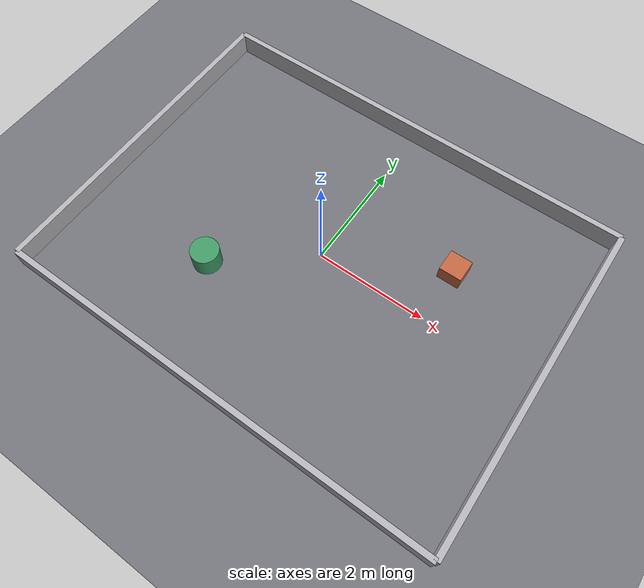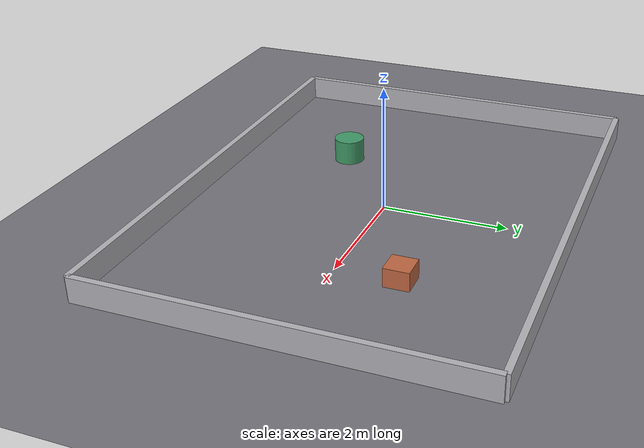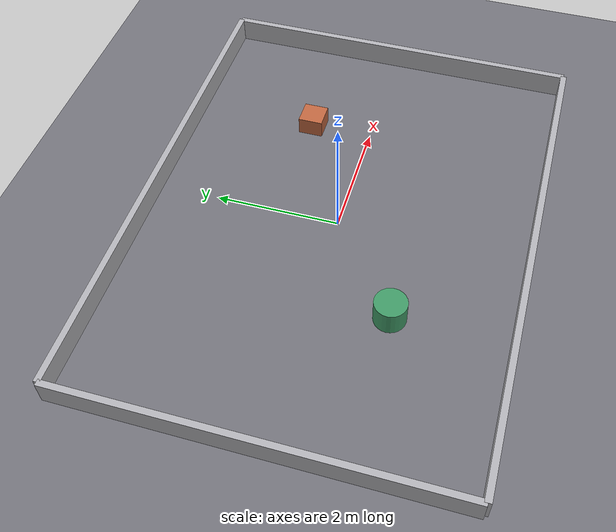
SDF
<?xml version="1.0"?>
<sdf version="1.10">
  <world name="indoor">

    <physics name="default" type="ignored">
      <max_step_size>0.002</max_step_size>
      <real_time_factor>1.0</real_time_factor>
    </physics>

    <plugin filename="gz-sim-physics-system" name="gz::sim::systems::Physics"/>
    <plugin filename="gz-sim-user-commands-system" name="gz::sim::systems::UserCommands"/>
    <plugin filename="gz-sim-scene-broadcaster-system" name="gz::sim::systems::SceneBroadcaster"/>
    <plugin filename="gz-sim-imu-system" name="gz::sim::systems::Imu"/>

    <!-- Le LiDAR et la camera passent par le pipeline de rendu, meme sans interface
         graphique. Sans GPU, c'est llvmpipe qui s'en charge. -->
    <plugin filename="gz-sim-sensors-system" name="gz::sim::systems::Sensors">
      <render_engine>ogre2</render_engine>
    </plugin>

    <light type="directional" name="sun">
      <cast_shadows>true</cast_shadows>
      <pose>0 0 10 0 0 0</pose>
      <diffuse>0.9 0.9 0.9 1</diffuse>
      <specular>0.2 0.2 0.2 1</specular>
      <direction>-0.5 0.3 -0.9</direction>
    </light>

    <model name="ground_plane">
      <static>true</static>
      <link name="link">
        <collision name="collision">
          <geometry>
            <plane><normal>0 0 1</normal><size>100 100</size></plane>
          </geometry>
        </collision>
        <visual name="visual">
          <geometry>
            <plane><normal>0 0 1</normal><size>100 100</size></plane>
          </geometry>
          <material>
            <ambient>0.35 0.35 0.38 1</ambient>
            <diffuse>0.45 0.45 0.48 1</diffuse>
          </material>
        </visual>
      </link>
    </model>

    <!-- Piece de 8 x 6 m, murs de 40 cm de haut : suffisant pour un LiDAR a 15 cm. -->
    <model name="walls">
      <static>true</static>
      <link name="link">
        <collision name="north">
          <pose>0 3 0.2 0 0 0</pose>
          <geometry><box><size>8 0.1 0.4</size></box></geometry>
        </collision>
        <visual name="north_visual">
          <pose>0 3 0.2 0 0 0</pose>
          <geometry><box><size>8 0.1 0.4</size></box></geometry>
          <material><ambient>0.6 0.6 0.62 1</ambient><diffuse>0.7 0.7 0.72 1</diffuse></material>
        </visual>

        <collision name="south">
          <pose>0 -3 0.2 0 0 0</pose>
          <geometry><box><size>8 0.1 0.4</size></box></geometry>
        </collision>
        <visual name="south_visual">
          <pose>0 -3 0.2 0 0 0</pose>
          <geometry><box><size>8 0.1 0.4</size></box></geometry>
          <material><ambient>0.6 0.6 0.62 1</ambient><diffuse>0.7 0.7 0.72 1</diffuse></material>
        </visual>

        <collision name="east">
          <pose>4 0 0.2 0 0 0</pose>
          <geometry><box><size>0.1 6 0.4</size></box></geometry>
        </collision>
        <visual name="east_visual">
          <pose>4 0 0.2 0 0 0</pose>
          <geometry><box><size>0.1 6 0.4</size></box></geometry>
          <material><ambient>0.6 0.6 0.62 1</ambient><diffuse>0.7 0.7 0.72 1</diffuse></material>
        </visual>

        <collision name="west">
          <pose>-4 0 0.2 0 0 0</pose>
          <geometry><box><size>0.1 6 0.4</size></box></geometry>
        </collision>
        <visual name="west_visual">
          <pose>-4 0 0.2 0 0 0</pose>
          <geometry><box><size>0.1 6 0.4</size></box></geometry>
          <material><ambient>0.6 0.6 0.62 1</ambient><diffuse>0.7 0.7 0.72 1</diffuse></material>
        </visual>
      </link>
    </model>

    <model name="obstacle_box">
      <static>true</static>
      <pose>2.0 1.0 0.15 0 0 0</pose>
      <link name="link">
        <collision name="collision">
          <geometry><box><size>0.4 0.4 0.3</size></box></geometry>
        </collision>
        <visual name="visual">
          <geometry><box><size>0.4 0.4 0.3</size></box></geometry>
          <material><ambient>0.6 0.3 0.2 1</ambient><diffuse>0.75 0.4 0.25 1</diffuse></material>
        </visual>
      </link>
    </model>

    <model name="obstacle_cylinder">
      <static>true</static>
      <pose>-1.5 -1.2 0.2 0 0 0</pose>
      <link name="link">
        <collision name="collision">
          <geometry><cylinder><radius>0.25</radius><length>0.4</length></cylinder></geometry>
        </collision>
        <visual name="visual">
          <geometry><cylinder><radius>0.25</radius><length>0.4</length></cylinder></geometry>
          <material><ambient>0.2 0.45 0.3 1</ambient><diffuse>0.25 0.6 0.4 1</diffuse></material>
        </visual>
      </link>
    </model>

  </world>
</sdf>
